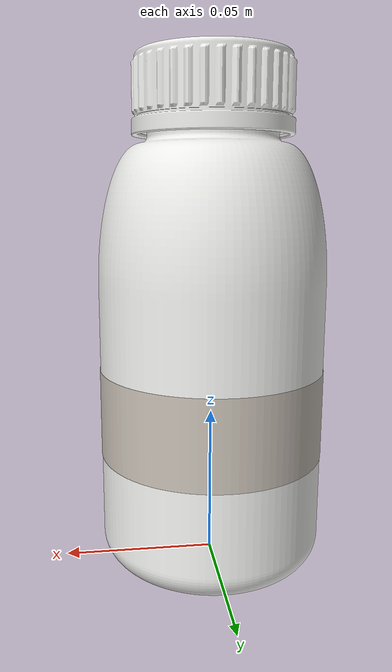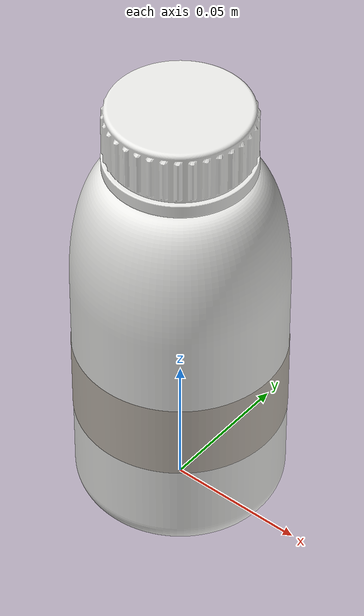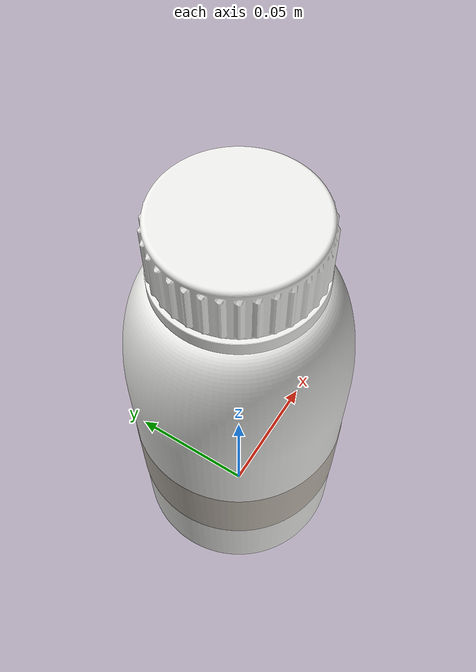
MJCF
<!-- Generated by tools/build_labelled_bottles.py. Musk ketone (powder),
     500 ml, marker 152, barcode 2000162345122.
     Origin bottom-centre, +Z up, the label's front facing -Y. -->
<mujoco model="PWD-0053">
  <asset>
    <mesh name="bottle_500ml_body" file="meshes/bottle_500ml_body.obj" inertia="exact"/>
    <mesh name="bottle_500ml_cap" file="meshes/bottle_500ml_cap.obj" inertia="exact"/>
    <mesh name="bottle_500ml_label" file="meshes/bottle_500ml_label.obj" inertia="shell"/>
    <texture name="label" type="2d" file="textures/PWD-0053.png"/>
    <material name="label" texture="label" specular="0.05" shininess="0.1"/>
  </asset>
  <worldbody>
    <body name="PWD-0053">
      <geom name="body" type="mesh" mesh="bottle_500ml_body" rgba="0.920 0.920 0.910 1.000" density="950"/>
      <geom name="cap" type="mesh" mesh="bottle_500ml_cap" rgba="0.920 0.920 0.910 1.000" density="900"/>
      <geom name="label" type="mesh" mesh="bottle_500ml_label" material="label" contype="0" conaffinity="0" mass="0"/>
    </body>
  </worldbody>
</mujoco>
